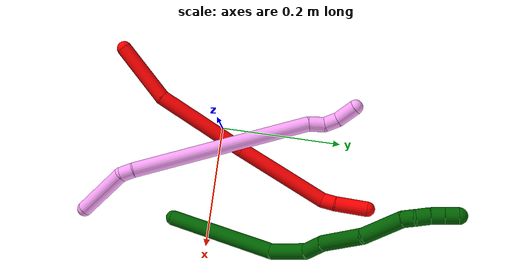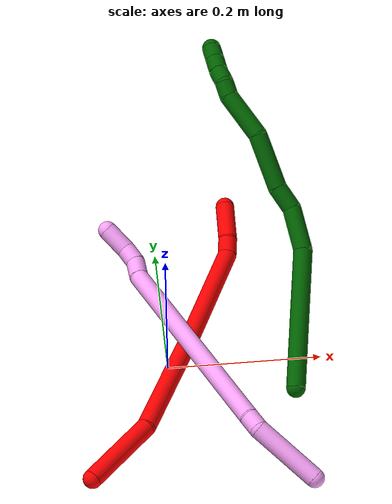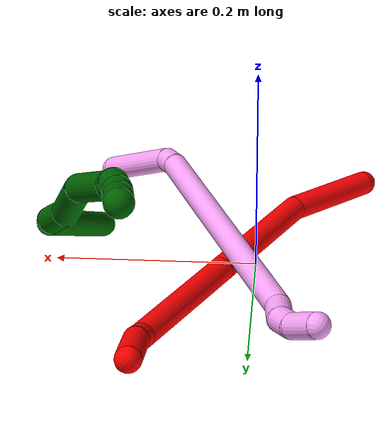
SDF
<sdf version="1.7">
 <world name="default">
  <model name="photoneo_s_sensor">
   <static>1</static>
   <pose>0 0 2 1.57079 1.57079 3.14159</pose>
   <link name="link">
    <inertial><mass>0.1</mass></inertial>
    <sensor name="sensor" type="depth">
     <update_rate>30</update_rate>
     <camera>
      <horizontal_fov>1.22</horizontal_fov>
      <image><width>1920</width><height>1200</height><format>B8G8R8</format></image>
      <clip><near>0.1</near><far>2</far></clip>
      <depth_camera><output>points</output></depth_camera>
     </camera>
     <plugin name="camera_plugin" filename="libgazebo_ros_depth_camera.so">
      <baseline>0.2</baseline>
      <alwaysOn>1</alwaysOn>
      <updateRate>0.0</updateRate>
      <cameraName>camera_ir</cameraName>
      <imageTopicName>/camera/color/image_raw</imageTopicName>
      <cameraInfoTopicName>/camera/color/camera_info</cameraInfoTopicName>
      <depthImageTopicName>/camera/depth/image_raw</depthImageTopicName>
      <depthImageCameraInfoTopicName>/camera/depth/camera_info</depthImageCameraInfoTopicName>
      <pointCloudTopicName>/camera/depth/points</pointCloudTopicName>
      <frameName>fr_optical</frameName>
      <pointCloudCutoff>0.1</pointCloudCutoff>
      <pointCloudCutoffMax>2.0</pointCloudCutoffMax>
      <distortionK1>0</distortionK1>
      <distortionK2>0</distortionK2>
      <distortionK3>0</distortionK3>
      <distortionT1>0</distortionT1>
      <distortionT2>0</distortionT2>
      <CxPrime>0</CxPrime>
      <Cx>0</Cx>
      <Cy>0</Cy>
      <focalLength>0</focalLength>
      <hackBaseline>0</hackBaseline>
     </plugin>
    </sensor>
   </link>
  </model>
  <model name="bin">
   <static>1</static>
   <link name="bottom">
    <collision name="collision-bottom">
     <pose>0 0 -0.01 0 -0 0</pose>
     <geometry><box><size>0.8 0.6 0.02</size></box></geometry>
     <surface>
      <friction><ode><mu>100</mu><mu2>100</mu2></ode></friction>
      <contact><collide_bitmask>65535</collide_bitmask></contact>
     </surface>
    </collision>
   </link>
   <link name="west_wall">
    <collision name="collision-west_wall">
     <pose>-0.41 0 0.1 0 -0 0</pose>
     <geometry><box><size>0.02 0.6 0.2</size></box></geometry>
     <surface>
      <friction><ode><mu>100</mu><mu2>100</mu2></ode></friction>
      <contact><collide_bitmask>65535</collide_bitmask></contact>
     </surface>
    </collision>
   </link>
   <link name="east_wall">
    <collision name="collision-east_wall">
     <pose>0.41 0 0.1 0 -0 0</pose>
     <geometry><box><size>0.02 0.6 0.2</size></box></geometry>
     <surface>
      <friction><ode><mu>100</mu><mu2>100</mu2></ode></friction>
      <contact><collide_bitmask>65535</collide_bitmask></contact>
     </surface>
    </collision>
   </link>
   <link name="south_wall">
    <collision name="collision-south_wall">
     <pose>0 -0.31 0.1 0 -0 0</pose>
     <geometry><box><size>0.8 0.02 0.2</size></box></geometry>
     <surface>
      <friction><ode><mu>100</mu><mu2>100</mu2></ode></friction>
      <contact><collide_bitmask>65535</collide_bitmask></contact>
     </surface>
    </collision>
   </link>
   <link name="north_wall">
    <collision name="collision-north_wall">
     <pose>0 0.31 0.1 0 -0 0</pose>
     <geometry><box><size>0.8 0.02 0.2</size></box></geometry>
     <surface>
      <friction><ode><mu>100</mu><mu2>100</mu2></ode></friction>
      <contact><collide_bitmask>65535</collide_bitmask></contact>
     </surface>
    </collision>
   </link>
  </model>
  <model name="2">
   <static>0</static>
   <link name="2">
    <collision name="collision-cylinder-e_1_1_4">
     <pose>0.034204 0.037457 -0.014176 -1.93259 0.70684 -0.981043</pose>
     <geometry><cylinder><radius>0.0125</radius><length>0.105336</length></cylinder></geometry>
     <surface>
      <friction><ode><mu>1.16</mu><mu2>1.16</mu2><slip1>0</slip1><slip2>0</slip2></ode></friction>
      <contact><ode><kp>1e+06</kp><kd>1</kd><max_vel>0</max_vel><min_depth>0.001</min_depth></ode></contact>
     </surface>
    </collision>
    <visual name="visual-cylinder-e_1_1_4">
     <pose>0.034204 0.037457 -0.014176 -1.93259 0.70684 -0.981043</pose>
     <geometry><cylinder><radius>0.0125</radius><length>0.105336</length></cylinder></geometry>
     <material><ambient>1 0 0 1</ambient></material>
    </visual>
    <collision name="collision-cylinder-e_2_4_5">
     <pose>0.10403 0.14619 -0.035238 -1.66712 0.4616 -0.506463</pose>
     <geometry><cylinder><radius>0.0125</radius><length>0.159957</length></cylinder></geometry>
     <surface>
      <friction><ode><mu>1.16</mu><mu2>1.16</mu2><slip1>0</slip1><slip2>0</slip2></ode></friction>
      <contact><ode><kp>1e+06</kp><kd>1</kd><max_vel>0</max_vel><min_depth>0.001</min_depth></ode></contact>
     </surface>
    </collision>
    <visual name="visual-cylinder-e_2_4_5">
     <pose>0.10403 0.14619 -0.035238 -1.66712 0.4616 -0.506463</pose>
     <geometry><cylinder><radius>0.0125</radius><length>0.159957</length></cylinder></geometry>
     <material><ambient>1 0 0 1</ambient></material>
    </visual>
    <collision name="collision-cylinder-e_3_5_6">
     <pose>0.174946 0.288223 -0.046283 -1.62949 0.462023 -0.488899</pose>
     <geometry><cylinder><radius>0.0125</radius><length>0.158361</length></cylinder></geometry>
     <surface>
      <friction><ode><mu>1.16</mu><mu2>1.16</mu2><slip1>0</slip1><slip2>0</slip2></ode></friction>
      <contact><ode><kp>1e+06</kp><kd>1</kd><max_vel>0</max_vel><min_depth>0.001</min_depth></ode></contact>
     </surface>
    </collision>
    <visual name="visual-cylinder-e_3_5_6">
     <pose>0.174946 0.288223 -0.046283 -1.62949 0.462023 -0.488899</pose>
     <geometry><cylinder><radius>0.0125</radius><length>0.158361</length></cylinder></geometry>
     <material><ambient>1 0 0 1</ambient></material>
    </visual>
    <collision name="collision-cylinder-e_4_6_7">
     <pose>0.215189 0.368475 -0.046138 -1.14538 0.443121 -0.288462</pose>
     <geometry><cylinder><radius>0.0125</radius><length>0.023079</length></cylinder></geometry>
     <surface>
      <friction><ode><mu>1.16</mu><mu2>1.16</mu2><slip1>0</slip1><slip2>0</slip2></ode></friction>
      <contact><ode><kp>1e+06</kp><kd>1</kd><max_vel>0</max_vel><min_depth>0.001</min_depth></ode></contact>
     </surface>
    </collision>
    <visual name="visual-cylinder-e_4_6_7">
     <pose>0.215189 0.368475 -0.046138 -1.14538 0.443121 -0.288462</pose>
     <geometry><cylinder><radius>0.0125</radius><length>0.023079</length></cylinder></geometry>
     <material><ambient>1 0 0 1</ambient></material>
    </visual>
    <collision name="collision-cylinder-e_5_7_2">
     <pose>0.226997 0.40228 -0.033387 -1.2363 0.260524 -0.185783</pose>
     <geometry><cylinder><radius>0.0125</radius><length>0.053267</length></cylinder></geometry>
     <surface>
      <friction><ode><mu>1.16</mu><mu2>1.16</mu2><slip1>0</slip1><slip2>0</slip2></ode></friction>
      <contact><ode><kp>1e+06</kp><kd>1</kd><max_vel>0</max_vel><min_depth>0.001</min_depth></ode></contact>
     </surface>
    </collision>
    <visual name="visual-cylinder-e_5_7_2">
     <pose>0.226997 0.40228 -0.033387 -1.2363 0.260524 -0.185783</pose>
     <geometry><cylinder><radius>0.0125</radius><length>0.053267</length></cylinder></geometry>
     <material><ambient>1 0 0 1</ambient></material>
    </visual>
    <collision name="collision-sphere-2">
     <pose>0.233858 0.426588 -0.024939 0 -0 0</pose>
     <geometry><sphere><radius>0.0125</radius></sphere></geometry>
     <surface>
      <friction><ode><mu>1.16</mu><mu2>1.16</mu2><slip1>0</slip1><slip2>0</slip2></ode></friction>
      <contact><ode><kp>1e+06</kp><kd>1</kd><max_vel>0</max_vel><min_depth>0.001</min_depth></ode></contact>
     </surface>
    </collision>
    <visual name="visual-sphere-2">
     <pose>0.233858 0.426588 -0.024939 0 -0 0</pose>
     <geometry><sphere><radius>0.0125</radius></sphere></geometry>
     <material><ambient>1 0 0 1</ambient></material>
    </visual>
    <collision name="collision-sphere-7">
     <pose>0.220137 0.377971 -0.041836 0 -0 0</pose>
     <geometry><sphere><radius>0.0125</radius></sphere></geometry>
     <surface>
      <friction><ode><mu>1.16</mu><mu2>1.16</mu2><slip1>0</slip1><slip2>0</slip2></ode></friction>
      <contact><ode><kp>1e+06</kp><kd>1</kd><max_vel>0</max_vel><min_depth>0.001</min_depth></ode></contact>
     </surface>
    </collision>
    <visual name="visual-sphere-7">
     <pose>0.220137 0.377971 -0.041836 0 -0 0</pose>
     <geometry><sphere><radius>0.0125</radius></sphere></geometry>
     <material><ambient>1 0 0 1</ambient></material>
    </visual>
    <collision name="collision-sphere-6">
     <pose>0.210241 0.358979 -0.050441 0 -0 0</pose>
     <geometry><sphere><radius>0.0125</radius></sphere></geometry>
     <surface>
      <friction><ode><mu>1.16</mu><mu2>1.16</mu2><slip1>0</slip1><slip2>0</slip2></ode></friction>
      <contact><ode><kp>1e+06</kp><kd>1</kd><max_vel>0</max_vel><min_depth>0.001</min_depth></ode></contact>
     </surface>
    </collision>
    <visual name="visual-sphere-6">
     <pose>0.210241 0.358979 -0.050441 0 -0 0</pose>
     <geometry><sphere><radius>0.0125</radius></sphere></geometry>
     <material><ambient>1 0 0 1</ambient></material>
    </visual>
    <collision name="collision-sphere-5">
     <pose>0.139651 0.217466 -0.042125 0 -0 0</pose>
     <geometry><sphere><radius>0.0125</radius></sphere></geometry>
     <surface>
      <friction><ode><mu>1.16</mu><mu2>1.16</mu2><slip1>0</slip1><slip2>0</slip2></ode></friction>
      <contact><ode><kp>1e+06</kp><kd>1</kd><max_vel>0</max_vel><min_depth>0.001</min_depth></ode></contact>
     </surface>
    </collision>
    <visual name="visual-sphere-5">
     <pose>0.139651 0.217466 -0.042125 0 -0 0</pose>
     <geometry><sphere><radius>0.0125</radius></sphere></geometry>
     <material><ambient>1 0 0 1</ambient></material>
    </visual>
    <collision name="collision-sphere-1">
     <geometry><sphere><radius>0.0125</radius></sphere></geometry>
     <surface>
      <friction><ode><mu>1.16</mu><mu2>1.16</mu2><slip1>0</slip1><slip2>0</slip2></ode></friction>
      <contact><ode><kp>1e+06</kp><kd>1</kd><max_vel>0</max_vel><min_depth>0.001</min_depth></ode></contact>
     </surface>
    </collision>
    <visual name="visual-sphere-1">
     <geometry><sphere><radius>0.0125</radius></sphere></geometry>
     <material><ambient>1 0 0 1</ambient></material>
    </visual>
    <collision name="collision-sphere-4">
     <pose>0.068409 0.074914 -0.028351 0 -0 0</pose>
     <geometry><sphere><radius>0.0125</radius></sphere></geometry>
     <surface>
      <friction><ode><mu>1.16</mu><mu2>1.16</mu2><slip1>0</slip1><slip2>0</slip2></ode></friction>
      <contact><ode><kp>1e+06</kp><kd>1</kd><max_vel>0</max_vel><min_depth>0.001</min_depth></ode></contact>
     </surface>
    </collision>
    <visual name="visual-sphere-4">
     <pose>0.068409 0.074914 -0.028351 0 -0 0</pose>
     <geometry><sphere><radius>0.0125</radius></sphere></geometry>
     <material><ambient>1 0 0 1</ambient></material>
    </visual>
    <inertial>
     <pose>0.130011 0.20581 -0.034605 0 -0 0</pose>
     <mass>0.5</mass>
     <inertia>
      <ixx>0.000255</ixx>
      <ixy>0</ixy>
      <ixz>0</ixz>
      <iyy>-0.00019</iyy>
      <iyz>0</iyz>
      <izz>-0.001075</izz>
     </inertia>
    </inertial>
   </link>
   <pose>-0.109432 -0.182395 0.012675 -0.327978 -0.660235 0.174605</pose>
  </model>
  <model name="4">
   <static>0</static>
   <link name="4">
    <collision name="collision-cylinder-e_1_1_4">
     <pose>-0.020651 0.04115 0.00604 -1.42506 -0.460875 0.39995</pose>
     <geometry><cylinder><radius>0.0125</radius><length>0.092871</length></cylinder></geometry>
     <surface>
      <friction><ode><mu>1.16</mu><mu2>1.16</mu2><slip1>0</slip1><slip2>0</slip2></ode></friction>
      <contact><ode><kp>1e+06</kp><kd>1</kd><max_vel>0</max_vel><min_depth>0.001</min_depth></ode></contact>
     </surface>
    </collision>
    <visual name="visual-cylinder-e_1_1_4">
     <pose>-0.020651 0.04115 0.00604 -1.42506 -0.460875 0.39995</pose>
     <geometry><cylinder><radius>0.0125</radius><length>0.092871</length></cylinder></geometry>
     <material><ambient>1 0.65098 0.996078 1</ambient></material>
    </visual>
    <collision name="collision-cylinder-e_2_4_5">
     <pose>-0.044679 0.090656 0.018184 -0.939929 -0.315379 0.161179</pose>
     <geometry><cylinder><radius>0.0125</radius><length>0.021773</length></cylinder></geometry>
     <surface>
      <friction><ode><mu>1.16</mu><mu2>1.16</mu2><slip1>0</slip1><slip2>0</slip2></ode></friction>
      <contact><ode><kp>1e+06</kp><kd>1</kd><max_vel>0</max_vel><min_depth>0.001</min_depth></ode></contact>
     </surface>
    </collision>
    <visual name="visual-cylinder-e_2_4_5">
     <pose>-0.044679 0.090656 0.018184 -0.939929 -0.315379 0.161179</pose>
     <geometry><cylinder><radius>0.0125</radius><length>0.021773</length></cylinder></geometry>
     <material><ambient>1 0.65098 0.996078 1</ambient></material>
    </visual>
    <collision name="collision-cylinder-e_3_5_6">
     <pose>-0.076456 0.20484 0.125583 -0.807277 -0.191494 0.08199</pose>
     <geometry><cylinder><radius>0.0125</radius><length>0.298437</length></cylinder></geometry>
     <surface>
      <friction><ode><mu>1.16</mu><mu2>1.16</mu2><slip1>0</slip1><slip2>0</slip2></ode></friction>
      <contact><ode><kp>1e+06</kp><kd>1</kd><max_vel>0</max_vel><min_depth>0.001</min_depth></ode></contact>
     </surface>
    </collision>
    <visual name="visual-cylinder-e_3_5_6">
     <pose>-0.076456 0.20484 0.125583 -0.807277 -0.191494 0.08199</pose>
     <geometry><cylinder><radius>0.0125</radius><length>0.298437</length></cylinder></geometry>
     <material><ambient>1 0.65098 0.996078 1</ambient></material>
    </visual>
    <collision name="collision-cylinder-e_4_6_7">
     <pose>-0.109822 0.316883 0.237786 -0.517954 -0.376574 0.100875</pose>
     <geometry><cylinder><radius>0.0125</radius><length>0.027006</length></cylinder></geometry>
     <surface>
      <friction><ode><mu>1.16</mu><mu2>1.16</mu2><slip1>0</slip1><slip2>0</slip2></ode></friction>
      <contact><ode><kp>1e+06</kp><kd>1</kd><max_vel>0</max_vel><min_depth>0.001</min_depth></ode></contact>
     </surface>
    </collision>
    <visual name="visual-cylinder-e_4_6_7">
     <pose>-0.109822 0.316883 0.237786 -0.517954 -0.376574 0.100875</pose>
     <geometry><cylinder><radius>0.0125</radius><length>0.027006</length></cylinder></geometry>
     <material><ambient>1 0.65098 0.996078 1</ambient></material>
    </visual>
    <collision name="collision-cylinder-e_5_7_8">
     <pose>-0.119335 0.332202 0.25472 -0.986168 -0.394753 0.2141</pose>
     <geometry><cylinder><radius>0.0125</radius><length>0.023648</length></cylinder></geometry>
     <surface>
      <friction><ode><mu>1.16</mu><mu2>1.16</mu2><slip1>0</slip1><slip2>0</slip2></ode></friction>
      <contact><ode><kp>1e+06</kp><kd>1</kd><max_vel>0</max_vel><min_depth>0.001</min_depth></ode></contact>
     </surface>
    </collision>
    <visual name="visual-cylinder-e_5_7_8">
     <pose>-0.119335 0.332202 0.25472 -0.986168 -0.394753 0.2141</pose>
     <geometry><cylinder><radius>0.0125</radius><length>0.023648</length></cylinder></geometry>
     <material><ambient>1 0.65098 0.996078 1</ambient></material>
    </visual>
    <collision name="collision-cylinder-e_6_8_2">
     <pose>-0.132749 0.356675 0.264472 -1.33281 -0.510967 0.405177</pose>
     <geometry><cylinder><radius>0.0125</radius><length>0.036265</length></cylinder></geometry>
     <surface>
      <friction><ode><mu>1.16</mu><mu2>1.16</mu2><slip1>0</slip1><slip2>0</slip2></ode></friction>
      <contact><ode><kp>1e+06</kp><kd>1</kd><max_vel>0</max_vel><min_depth>0.001</min_depth></ode></contact>
     </surface>
    </collision>
    <visual name="visual-cylinder-e_6_8_2">
     <pose>-0.132749 0.356675 0.264472 -1.33281 -0.510967 0.405177</pose>
     <geometry><cylinder><radius>0.0125</radius><length>0.036265</length></cylinder></geometry>
     <material><ambient>1 0.65098 0.996078 1</ambient></material>
    </visual>
    <collision name="collision-sphere-2">
     <pose>-0.141616 0.372045 0.268201 0 -0 0</pose>
     <geometry><sphere><radius>0.0125</radius></sphere></geometry>
     <surface>
      <friction><ode><mu>1.16</mu><mu2>1.16</mu2><slip1>0</slip1><slip2>0</slip2></ode></friction>
      <contact><ode><kp>1e+06</kp><kd>1</kd><max_vel>0</max_vel><min_depth>0.001</min_depth></ode></contact>
     </surface>
    </collision>
    <visual name="visual-sphere-2">
     <pose>-0.141616 0.372045 0.268201 0 -0 0</pose>
     <geometry><sphere><radius>0.0125</radius></sphere></geometry>
     <material><ambient>1 0.65098 0.996078 1</ambient></material>
    </visual>
    <collision name="collision-sphere-4">
     <pose>-0.041303 0.082299 0.01208 0 -0 0</pose>
     <geometry><sphere><radius>0.0125</radius></sphere></geometry>
     <surface>
      <friction><ode><mu>1.16</mu><mu2>1.16</mu2><slip1>0</slip1><slip2>0</slip2></ode></friction>
      <contact><ode><kp>1e+06</kp><kd>1</kd><max_vel>0</max_vel><min_depth>0.001</min_depth></ode></contact>
     </surface>
    </collision>
    <visual name="visual-sphere-4">
     <pose>-0.041303 0.082299 0.01208 0 -0 0</pose>
     <geometry><sphere><radius>0.0125</radius></sphere></geometry>
     <material><ambient>1 0.65098 0.996078 1</ambient></material>
    </visual>
    <collision name="collision-sphere-1">
     <geometry><sphere><radius>0.0125</radius></sphere></geometry>
     <surface>
      <friction><ode><mu>1.16</mu><mu2>1.16</mu2><slip1>0</slip1><slip2>0</slip2></ode></friction>
      <contact><ode><kp>1e+06</kp><kd>1</kd><max_vel>0</max_vel><min_depth>0.001</min_depth></ode></contact>
     </surface>
    </collision>
    <visual name="visual-sphere-1">
     <geometry><sphere><radius>0.0125</radius></sphere></geometry>
     <material><ambient>1 0.65098 0.996078 1</ambient></material>
    </visual>
    <collision name="collision-sphere-8">
     <pose>-0.123882 0.341304 0.260744 0 -0 0</pose>
     <geometry><sphere><radius>0.0125</radius></sphere></geometry>
     <surface>
      <friction><ode><mu>1.16</mu><mu2>1.16</mu2><slip1>0</slip1><slip2>0</slip2></ode></friction>
      <contact><ode><kp>1e+06</kp><kd>1</kd><max_vel>0</max_vel><min_depth>0.001</min_depth></ode></contact>
     </surface>
    </collision>
    <visual name="visual-sphere-8">
     <pose>-0.123882 0.341304 0.260744 0 -0 0</pose>
     <geometry><sphere><radius>0.0125</radius></sphere></geometry>
     <material><ambient>1 0.65098 0.996078 1</ambient></material>
    </visual>
    <collision name="collision-sphere-5">
     <pose>-0.048056 0.099014 0.024289 0 -0 0</pose>
     <geometry><sphere><radius>0.0125</radius></sphere></geometry>
     <surface>
      <friction><ode><mu>1.16</mu><mu2>1.16</mu2><slip1>0</slip1><slip2>0</slip2></ode></friction>
      <contact><ode><kp>1e+06</kp><kd>1</kd><max_vel>0</max_vel><min_depth>0.001</min_depth></ode></contact>
     </surface>
    </collision>
    <visual name="visual-sphere-5">
     <pose>-0.048056 0.099014 0.024289 0 -0 0</pose>
     <geometry><sphere><radius>0.0125</radius></sphere></geometry>
     <material><ambient>1 0.65098 0.996078 1</ambient></material>
    </visual>
    <collision name="collision-sphere-6">
     <pose>-0.104856 0.310666 0.226876 0 -0 0</pose>
     <geometry><sphere><radius>0.0125</radius></sphere></geometry>
     <surface>
      <friction><ode><mu>1.16</mu><mu2>1.16</mu2><slip1>0</slip1><slip2>0</slip2></ode></friction>
      <contact><ode><kp>1e+06</kp><kd>1</kd><max_vel>0</max_vel><min_depth>0.001</min_depth></ode></contact>
     </surface>
    </collision>
    <visual name="visual-sphere-6">
     <pose>-0.104856 0.310666 0.226876 0 -0 0</pose>
     <geometry><sphere><radius>0.0125</radius></sphere></geometry>
     <material><ambient>1 0.65098 0.996078 1</ambient></material>
    </visual>
    <collision name="collision-sphere-7">
     <pose>-0.114787 0.3231 0.248696 0 -0 0</pose>
     <geometry><sphere><radius>0.0125</radius></sphere></geometry>
     <surface>
      <friction><ode><mu>1.16</mu><mu2>1.16</mu2><slip1>0</slip1><slip2>0</slip2></ode></friction>
      <contact><ode><kp>1e+06</kp><kd>1</kd><max_vel>0</max_vel><min_depth>0.001</min_depth></ode></contact>
     </surface>
    </collision>
    <visual name="visual-sphere-7">
     <pose>-0.114787 0.3231 0.248696 0 -0 0</pose>
     <geometry><sphere><radius>0.0125</radius></sphere></geometry>
     <material><ambient>1 0.65098 0.996078 1</ambient></material>
    </visual>
    <inertial>
     <pose>-0.07262 0.192552 0.120944 0 -0 0</pose>
     <mass>0.5</mass>
     <inertia>
      <ixx>0.002442</ixx>
      <ixy>0</ixy>
      <ixz>0</ixz>
      <iyy>0.001823</iyy>
      <iyz>0</iyz>
      <izz>-0.001169</izz>
     </inertia>
    </inertial>
   </link>
   <pose>0.166026 -0.208069 0.011805 3.06105 1.15179 -2.03544</pose>
  </model>
  <model name="6">
   <static>0</static>
   <link name="6">
    <collision name="collision-cylinder-e_1_1_4">
     <pose>-0.006915 0.032627 0.087616 -0.35648 -0.073829 0.013306</pose>
     <geometry><cylinder><radius>0.0125</radius><length>0.187498</length></cylinder></geometry>
     <surface>
      <friction><ode><mu>1.16</mu><mu2>1.16</mu2><slip1>0</slip1><slip2>0</slip2></ode></friction>
      <contact><ode><kp>1e+06</kp><kd>1</kd><max_vel>0</max_vel><min_depth>0.001</min_depth></ode></contact>
     </surface>
    </collision>
    <visual name="visual-cylinder-e_1_1_4">
     <pose>-0.006915 0.032627 0.087616 -0.35648 -0.073829 0.013306</pose>
     <geometry><cylinder><radius>0.0125</radius><length>0.187498</length></cylinder></geometry>
     <material><ambient>0 0.392157 0.003922 1</ambient></material>
    </visual>
    <collision name="collision-cylinder-e_2_4_5">
     <pose>-0.007233 0.073655 0.202589 -0.297941 0.226572 -0.034147</pose>
     <geometry><cylinder><radius>0.0125</radius><length>0.058737</length></cylinder></geometry>
     <surface>
      <friction><ode><mu>1.16</mu><mu2>1.16</mu2><slip1>0</slip1><slip2>0</slip2></ode></friction>
      <contact><ode><kp>1e+06</kp><kd>1</kd><max_vel>0</max_vel><min_depth>0.001</min_depth></ode></contact>
     </surface>
    </collision>
    <visual name="visual-cylinder-e_2_4_5">
     <pose>-0.007233 0.073655 0.202589 -0.297941 0.226572 -0.034147</pose>
     <geometry><cylinder><radius>0.0125</radius><length>0.058737</length></cylinder></geometry>
     <material><ambient>0 0.392157 0.003922 1</ambient></material>
    </visual>
    <collision name="collision-cylinder-e_3_5_6">
     <pose>0.009273 0.086857 0.242494 -0.365443 0.635494 -0.121397</pose>
     <geometry><cylinder><radius>0.0125</radius><length>0.033388</length></cylinder></geometry>
     <surface>
      <friction><ode><mu>1.16</mu><mu2>1.16</mu2><slip1>0</slip1><slip2>0</slip2></ode></friction>
      <contact><ode><kp>1e+06</kp><kd>1</kd><max_vel>0</max_vel><min_depth>0.001</min_depth></ode></contact>
     </surface>
    </collision>
    <visual name="visual-cylinder-e_3_5_6">
     <pose>0.009273 0.086857 0.242494 -0.365443 0.635494 -0.121397</pose>
     <geometry><cylinder><radius>0.0125</radius><length>0.033388</length></cylinder></geometry>
     <material><ambient>0 0.392157 0.003922 1</ambient></material>
    </visual>
    <collision name="collision-cylinder-e_4_6_7">
     <pose>0.034375 0.108172 0.284465 -0.511434 0.423074 -0.112171</pose>
     <geometry><cylinder><radius>0.0125</radius><length>0.074007</length></cylinder></geometry>
     <surface>
      <friction><ode><mu>1.16</mu><mu2>1.16</mu2><slip1>0</slip1><slip2>0</slip2></ode></friction>
      <contact><ode><kp>1e+06</kp><kd>1</kd><max_vel>0</max_vel><min_depth>0.001</min_depth></ode></contact>
     </surface>
    </collision>
    <visual name="visual-cylinder-e_4_6_7">
     <pose>0.034375 0.108172 0.284465 -0.511434 0.423074 -0.112171</pose>
     <geometry><cylinder><radius>0.0125</radius><length>0.074007</length></cylinder></geometry>
     <material><ambient>0 0.392157 0.003922 1</ambient></material>
    </visual>
    <collision name="collision-cylinder-e_5_7_8">
     <pose>0.067405 0.129102 0.340825 -0.16251 0.578838 -0.048489</pose>
     <geometry><cylinder><radius>0.0125</radius><length>0.065215</length></cylinder></geometry>
     <surface>
      <friction><ode><mu>1.16</mu><mu2>1.16</mu2><slip1>0</slip1><slip2>0</slip2></ode></friction>
      <contact><ode><kp>1e+06</kp><kd>1</kd><max_vel>0</max_vel><min_depth>0.001</min_depth></ode></contact>
     </surface>
    </collision>
    <visual name="visual-cylinder-e_5_7_8">
     <pose>0.067405 0.129102 0.340825 -0.16251 0.578838 -0.048489</pose>
     <geometry><cylinder><radius>0.0125</radius><length>0.065215</length></cylinder></geometry>
     <material><ambient>0 0.392157 0.003922 1</ambient></material>
    </visual>
    <collision name="collision-cylinder-e_6_8_9">
     <pose>0.088393 0.136611 0.376823 -0.328801 0.317773 -0.053153</pose>
     <geometry><cylinder><radius>0.0125</radius><length>0.020161</length></cylinder></geometry>
     <surface>
      <friction><ode><mu>1.16</mu><mu2>1.16</mu2><slip1>0</slip1><slip2>0</slip2></ode></friction>
      <contact><ode><kp>1e+06</kp><kd>1</kd><max_vel>0</max_vel><min_depth>0.001</min_depth></ode></contact>
     </surface>
    </collision>
    <visual name="visual-cylinder-e_6_8_9">
     <pose>0.088393 0.136611 0.376823 -0.328801 0.317773 -0.053153</pose>
     <geometry><cylinder><radius>0.0125</radius><length>0.020161</length></cylinder></geometry>
     <material><ambient>0 0.392157 0.003922 1</ambient></material>
    </visual>
    <collision name="collision-cylinder-e_7_9_10">
     <pose>0.093902 0.13894 0.395992 0.075319 0.228732 0.008656</pose>
     <geometry><cylinder><radius>0.0125</radius><length>0.02081</length></cylinder></geometry>
     <surface>
      <friction><ode><mu>1.16</mu><mu2>1.16</mu2><slip1>0</slip1><slip2>0</slip2></ode></friction>
      <contact><ode><kp>1e+06</kp><kd>1</kd><max_vel>0</max_vel><min_depth>0.001</min_depth></ode></contact>
     </surface>
    </collision>
    <visual name="visual-cylinder-e_7_9_10">
     <pose>0.093902 0.13894 0.395992 0.075319 0.228732 0.008656</pose>
     <geometry><cylinder><radius>0.0125</radius><length>0.02081</length></cylinder></geometry>
     <material><ambient>0 0.392157 0.003922 1</ambient></material>
    </visual>
    <collision name="collision-cylinder-e_8_10_11">
     <pose>0.097466 0.138239 0.416098 -0.006146 0.119862 -0.000369</pose>
     <geometry><cylinder><radius>0.0125</radius><length>0.020148</length></cylinder></geometry>
     <surface>
      <friction><ode><mu>1.16</mu><mu2>1.16</mu2><slip1>0</slip1><slip2>0</slip2></ode></friction>
      <contact><ode><kp>1e+06</kp><kd>1</kd><max_vel>0</max_vel><min_depth>0.001</min_depth></ode></contact>
     </surface>
    </collision>
    <visual name="visual-cylinder-e_8_10_11">
     <pose>0.097466 0.138239 0.416098 -0.006146 0.119862 -0.000369</pose>
     <geometry><cylinder><radius>0.0125</radius><length>0.020148</length></cylinder></geometry>
     <material><ambient>0 0.392157 0.003922 1</ambient></material>
    </visual>
    <collision name="collision-cylinder-e_9_11_2">
     <pose>0.099881 0.138403 0.436044 -0.010292 0.121112 -0.000624</pose>
     <geometry><cylinder><radius>0.0125</radius><length>0.020036</length></cylinder></geometry>
     <surface>
      <friction><ode><mu>1.16</mu><mu2>1.16</mu2><slip1>0</slip1><slip2>0</slip2></ode></friction>
      <contact><ode><kp>1e+06</kp><kd>1</kd><max_vel>0</max_vel><min_depth>0.001</min_depth></ode></contact>
     </surface>
    </collision>
    <visual name="visual-cylinder-e_9_11_2">
     <pose>0.099881 0.138403 0.436044 -0.010292 0.121112 -0.000624</pose>
     <geometry><cylinder><radius>0.0125</radius><length>0.020036</length></cylinder></geometry>
     <material><ambient>0 0.392157 0.003922 1</ambient></material>
    </visual>
    <collision name="collision-sphere-2">
     <pose>0.101091 0.138505 0.445988 0 -0 0</pose>
     <geometry><sphere><radius>0.0125</radius></sphere></geometry>
     <surface>
      <friction><ode><mu>1.16</mu><mu2>1.16</mu2><slip1>0</slip1><slip2>0</slip2></ode></friction>
      <contact><ode><kp>1e+06</kp><kd>1</kd><max_vel>0</max_vel><min_depth>0.001</min_depth></ode></contact>
     </surface>
    </collision>
    <visual name="visual-sphere-2">
     <pose>0.101091 0.138505 0.445988 0 -0 0</pose>
     <geometry><sphere><radius>0.0125</radius></sphere></geometry>
     <material><ambient>0 0.392157 0.003922 1</ambient></material>
    </visual>
    <collision name="collision-sphere-11">
     <pose>0.09867 0.138301 0.4261 0 -0 0</pose>
     <geometry><sphere><radius>0.0125</radius></sphere></geometry>
     <surface>
      <friction><ode><mu>1.16</mu><mu2>1.16</mu2><slip1>0</slip1><slip2>0</slip2></ode></friction>
      <contact><ode><kp>1e+06</kp><kd>1</kd><max_vel>0</max_vel><min_depth>0.001</min_depth></ode></contact>
     </surface>
    </collision>
    <visual name="visual-sphere-11">
     <pose>0.09867 0.138301 0.4261 0 -0 0</pose>
     <geometry><sphere><radius>0.0125</radius></sphere></geometry>
     <material><ambient>0 0.392157 0.003922 1</ambient></material>
    </visual>
    <collision name="collision-sphere-10">
     <pose>0.096261 0.138178 0.406097 0 -0 0</pose>
     <geometry><sphere><radius>0.0125</radius></sphere></geometry>
     <surface>
      <friction><ode><mu>1.16</mu><mu2>1.16</mu2><slip1>0</slip1><slip2>0</slip2></ode></friction>
      <contact><ode><kp>1e+06</kp><kd>1</kd><max_vel>0</max_vel><min_depth>0.001</min_depth></ode></contact>
     </surface>
    </collision>
    <visual name="visual-sphere-10">
     <pose>0.096261 0.138178 0.406097 0 -0 0</pose>
     <geometry><sphere><radius>0.0125</radius></sphere></geometry>
     <material><ambient>0 0.392157 0.003922 1</ambient></material>
    </visual>
    <collision name="collision-sphere-9">
     <pose>0.091542 0.139703 0.385886 0 -0 0</pose>
     <geometry><sphere><radius>0.0125</radius></sphere></geometry>
     <surface>
      <friction><ode><mu>1.16</mu><mu2>1.16</mu2><slip1>0</slip1><slip2>0</slip2></ode></friction>
      <contact><ode><kp>1e+06</kp><kd>1</kd><max_vel>0</max_vel><min_depth>0.001</min_depth></ode></contact>
     </surface>
    </collision>
    <visual name="visual-sphere-9">
     <pose>0.091542 0.139703 0.385886 0 -0 0</pose>
     <geometry><sphere><radius>0.0125</radius></sphere></geometry>
     <material><ambient>0 0.392157 0.003922 1</ambient></material>
    </visual>
    <collision name="collision-sphere-4">
     <pose>-0.01383 0.065254 0.175232 0 -0 0</pose>
     <geometry><sphere><radius>0.0125</radius></sphere></geometry>
     <surface>
      <friction><ode><mu>1.16</mu><mu2>1.16</mu2><slip1>0</slip1><slip2>0</slip2></ode></friction>
      <contact><ode><kp>1e+06</kp><kd>1</kd><max_vel>0</max_vel><min_depth>0.001</min_depth></ode></contact>
     </surface>
    </collision>
    <visual name="visual-sphere-4">
     <pose>-0.01383 0.065254 0.175232 0 -0 0</pose>
     <geometry><sphere><radius>0.0125</radius></sphere></geometry>
     <material><ambient>0 0.392157 0.003922 1</ambient></material>
    </visual>
    <collision name="collision-sphere-1">
     <geometry><sphere><radius>0.0125</radius></sphere></geometry>
     <surface>
      <friction><ode><mu>1.16</mu><mu2>1.16</mu2><slip1>0</slip1><slip2>0</slip2></ode></friction>
      <contact><ode><kp>1e+06</kp><kd>1</kd><max_vel>0</max_vel><min_depth>0.001</min_depth></ode></contact>
     </surface>
    </collision>
    <visual name="visual-sphere-1">
     <geometry><sphere><radius>0.0125</radius></sphere></geometry>
     <material><ambient>0 0.392157 0.003922 1</ambient></material>
    </visual>
    <collision name="collision-sphere-8">
     <pose>0.085243 0.133519 0.36776 0 -0 0</pose>
     <geometry><sphere><radius>0.0125</radius></sphere></geometry>
     <surface>
      <friction><ode><mu>1.16</mu><mu2>1.16</mu2><slip1>0</slip1><slip2>0</slip2></ode></friction>
      <contact><ode><kp>1e+06</kp><kd>1</kd><max_vel>0</max_vel><min_depth>0.001</min_depth></ode></contact>
     </surface>
    </collision>
    <visual name="visual-sphere-8">
     <pose>0.085243 0.133519 0.36776 0 -0 0</pose>
     <geometry><sphere><radius>0.0125</radius></sphere></geometry>
     <material><ambient>0 0.392157 0.003922 1</ambient></material>
    </visual>
    <collision name="collision-sphere-5">
     <pose>-0.000636 0.082056 0.229946 0 -0 0</pose>
     <geometry><sphere><radius>0.0125</radius></sphere></geometry>
     <surface>
      <friction><ode><mu>1.16</mu><mu2>1.16</mu2><slip1>0</slip1><slip2>0</slip2></ode></friction>
      <contact><ode><kp>1e+06</kp><kd>1</kd><max_vel>0</max_vel><min_depth>0.001</min_depth></ode></contact>
     </surface>
    </collision>
    <visual name="visual-sphere-5">
     <pose>-0.000636 0.082056 0.229946 0 -0 0</pose>
     <geometry><sphere><radius>0.0125</radius></sphere></geometry>
     <material><ambient>0 0.392157 0.003922 1</ambient></material>
    </visual>
    <collision name="collision-sphere-6">
     <pose>0.019183 0.091659 0.255042 0 -0 0</pose>
     <geometry><sphere><radius>0.0125</radius></sphere></geometry>
     <surface>
      <friction><ode><mu>1.16</mu><mu2>1.16</mu2><slip1>0</slip1><slip2>0</slip2></ode></friction>
      <contact><ode><kp>1e+06</kp><kd>1</kd><max_vel>0</max_vel><min_depth>0.001</min_depth></ode></contact>
     </surface>
    </collision>
    <visual name="visual-sphere-6">
     <pose>0.019183 0.091659 0.255042 0 -0 0</pose>
     <geometry><sphere><radius>0.0125</radius></sphere></geometry>
     <material><ambient>0 0.392157 0.003922 1</ambient></material>
    </visual>
    <collision name="collision-sphere-7">
     <pose>0.049567 0.124686 0.313889 0 -0 0</pose>
     <geometry><sphere><radius>0.0125</radius></sphere></geometry>
     <surface>
      <friction><ode><mu>1.16</mu><mu2>1.16</mu2><slip1>0</slip1><slip2>0</slip2></ode></friction>
      <contact><ode><kp>1e+06</kp><kd>1</kd><max_vel>0</max_vel><min_depth>0.001</min_depth></ode></contact>
     </surface>
    </collision>
    <visual name="visual-sphere-7">
     <pose>0.049567 0.124686 0.313889 0 -0 0</pose>
     <geometry><sphere><radius>0.0125</radius></sphere></geometry>
     <material><ambient>0 0.392157 0.003922 1</ambient></material>
    </visual>
    <inertial>
     <pose>0.026458 0.081945 0.225321 0 -0 0</pose>
     <mass>0.5</mass>
     <inertia>
      <ixx>0.000647</ixx>
      <ixy>0</ixy>
      <ixz>0</ixz>
      <iyy>0.000621</iyy>
      <iyz>0</iyz>
      <izz>-0.000182</izz>
     </inertia>
    </inertial>
   </link>
   <pose>0.16041 -0.059662 0.011497 1.45032 -0.303667 -3.07665</pose>
  </model>
 </world>
</sdf>
